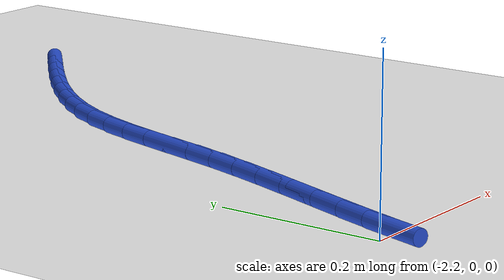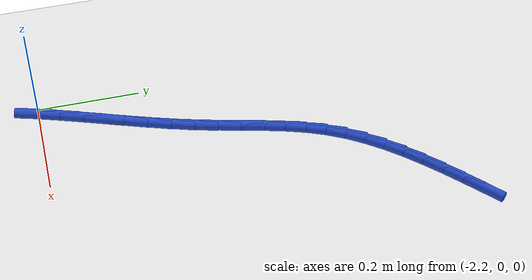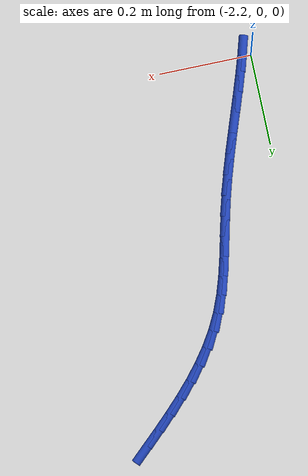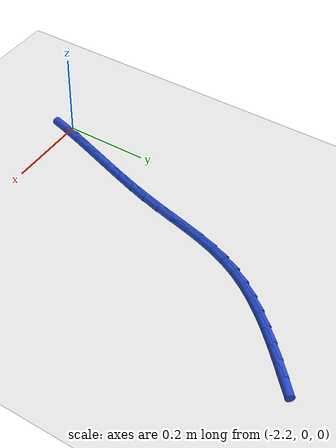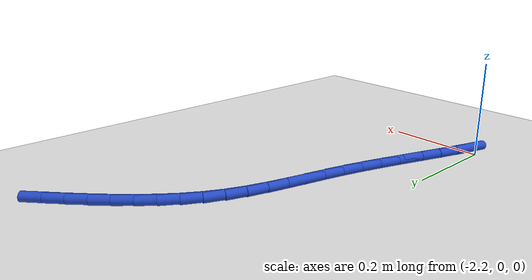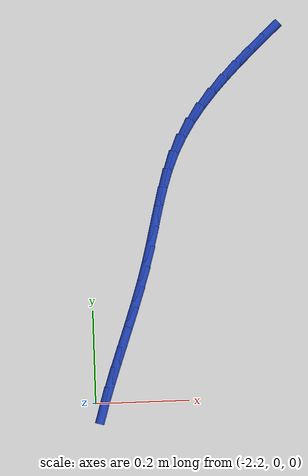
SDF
<sdf version="1.6">
 <world name="default">
  <model name="ground_plane">
   <static>1</static>
   <link name="link">
    <collision name="collision">
     <geometry><plane><normal>0 0 1</normal><size>100 100</size></plane></geometry>
     <surface><friction><ode><mu>100</mu><mu2>50</mu2></ode></friction></surface>
    </collision>
    <visual name="visual">
     <cast_shadows>0</cast_shadows>
     <geometry><plane><normal>0 0 1</normal><size>100 100</size></plane></geometry>
     <material>
      <script><uri>file://media/materials/scripts/gazebo.material</uri><name>Gazebo/WhiteGlow</name></script>
     </material>
    </visual>
   </link>
  </model>
  <model name="line">
   <link name="link_62">
    <pose>-1.8074625239738802 0.7809285111641552 0.01 0 1.57 0.7473431701015066</pose>
    <collision name="collision">
     <geometry><cylinder><radius>0.01</radius><length>0.08</length></cylinder></geometry>
    </collision>
    <visual name="visual">
     <material>
      <script><name>Gazebo/Blue</name><uri>file://media/materials/scripts/gazebo.material</uri></script>
     </material>
     <geometry><cylinder><radius>0.01</radius><length>0.08</length></cylinder></geometry>
    </visual>
   </link>
   <link name="link_63">
    <pose>-1.8385737901208974 0.7520993782561897 0.01 0 1.57 0.7634660642890896</pose>
    <collision name="collision">
     <geometry><cylinder><radius>0.01</radius><length>0.08</length></cylinder></geometry>
    </collision>
    <visual name="visual">
     <material>
      <script><name>Gazebo/Blue</name><uri>file://media/materials/scripts/gazebo.material</uri></script>
     </material>
     <geometry><cylinder><radius>0.01</radius><length>0.08</length></cylinder></geometry>
    </visual>
   </link>
   <link name="link_64">
    <pose>-1.8687483067696782 0.7232202399274006 0.01 0 1.57 0.7899852548965082</pose>
    <collision name="collision">
     <geometry><cylinder><radius>0.01</radius><length>0.08</length></cylinder></geometry>
    </collision>
    <visual name="visual">
     <material>
      <script><name>Gazebo/Blue</name><uri>file://media/materials/scripts/gazebo.material</uri></script>
     </material>
     <geometry><cylinder><radius>0.01</radius><length>0.08</length></cylinder></geometry>
    </visual>
   </link>
   <link name="link_65">
    <pose>-1.8976661694718746 0.6940358550298262 0.01 0 1.57 0.827477518248636</pose>
    <collision name="collision">
     <geometry><cylinder><radius>0.01</radius><length>0.08</length></cylinder></geometry>
    </collision>
    <visual name="visual">
     <material>
      <script><name>Gazebo/Blue</name><uri>file://media/materials/scripts/gazebo.material</uri></script>
     </material>
     <geometry><cylinder><radius>0.01</radius><length>0.08</length></cylinder></geometry>
    </visual>
   </link>
   <link name="link_66">
    <pose>-1.9250074737791392 0.6642909824155044 0.01 0 1.57 0.876489357288145</pose>
    <collision name="collision">
     <geometry><cylinder><radius>0.01</radius><length>0.08</length></cylinder></geometry>
    </collision>
    <visual name="visual">
     <material>
      <script><name>Gazebo/Blue</name><uri>file://media/materials/scripts/gazebo.material</uri></script>
     </material>
     <geometry><cylinder><radius>0.01</radius><length>0.08</length></cylinder></geometry>
    </visual>
   </link>
   <link name="link_67">
    <pose>-1.9504523152431228 0.6337303809364744 0.01 0 1.57 0.9373901838588955</pose>
    <collision name="collision">
     <geometry><cylinder><radius>0.01</radius><length>0.08</length></cylinder></geometry>
    </collision>
    <visual name="visual">
     <material>
      <script><name>Gazebo/Blue</name><uri>file://media/materials/scripts/gazebo.material</uri></script>
     </material>
     <geometry><cylinder><radius>0.01</radius><length>0.08</length></cylinder></geometry>
    </visual>
   </link>
   <link name="link_68">
    <pose>-1.9736807894154778 0.6020988094447737 0.01 0 1.57 1.0101576279154085</pose>
    <collision name="collision">
     <geometry><cylinder><radius>0.01</radius><length>0.08</length></cylinder></geometry>
    </collision>
    <visual name="visual">
     <material>
      <script><name>Gazebo/Blue</name><uri>file://media/materials/scripts/gazebo.material</uri></script>
     </material>
     <geometry><cylinder><radius>0.01</radius><length>0.08</length></cylinder></geometry>
    </visual>
   </link>
   <link name="link_69">
    <pose>-1.994372991847856 0.5691410267924414 0.01 0 1.57 1.0941157550892997</pose>
    <collision name="collision">
     <geometry><cylinder><radius>0.01</radius><length>0.08</length></cylinder></geometry>
    </collision>
    <visual name="visual">
     <material>
      <script><name>Gazebo/Blue</name><uri>file://media/materials/scripts/gazebo.material</uri></script>
     </material>
     <geometry><cylinder><radius>0.01</radius><length>0.08</length></cylinder></geometry>
    </visual>
   </link>
   <link name="link_70">
    <pose>-2.0122090180919088 0.5346017918315156 0.01 0 1.57 1.1828278139432165</pose>
    <collision name="collision">
     <geometry><cylinder><radius>0.01</radius><length>0.08</length></cylinder></geometry>
    </collision>
    <visual name="visual">
     <material>
      <script><name>Gazebo/Blue</name><uri>file://media/materials/scripts/gazebo.material</uri></script>
     </material>
     <geometry><cylinder><radius>0.01</radius><length>0.08</length></cylinder></geometry>
    </visual>
   </link>
   <link name="link_71">
    <pose>-2.0270449683745726 0.4982998634184965 0.01 0 1.57 1.2537887542804849</pose>
    <collision name="collision">
     <geometry><cylinder><radius>0.01</radius><length>0.08</length></cylinder></geometry>
    </collision>
    <visual name="visual">
     <material>
      <script><name>Gazebo/Blue</name><uri>file://media/materials/scripts/gazebo.material</uri></script>
     </material>
     <geometry><cylinder><radius>0.01</radius><length>0.08</length></cylinder></geometry>
    </visual>
   </link>
   <link name="link_72">
    <pose>-2.0394886622723254 0.4603700558506325 0.01 0 1.57 1.301442071299136</pose>
    <collision name="collision">
     <geometry><cylinder><radius>0.01</radius><length>0.08</length></cylinder></geometry>
    </collision>
    <visual name="visual">
     <material>
      <script><name>Gazebo/Blue</name><uri>file://media/materials/scripts/gazebo.material</uri></script>
     </material>
     <geometry><cylinder><radius>0.01</radius><length>0.08</length></cylinder></geometry>
    </visual>
   </link>
   <link name="link_73">
    <pose>-2.0503485713981564 0.4210315462500401 0.01 0 1.57 1.3269189731755269</pose>
    <collision name="collision">
     <geometry><cylinder><radius>0.01</radius><length>0.08</length></cylinder></geometry>
    </collision>
    <visual name="visual">
     <material>
      <script><name>Gazebo/Blue</name><uri>file://media/materials/scripts/gazebo.material</uri></script>
     </material>
     <geometry><cylinder><radius>0.01</radius><length>0.08</length></cylinder></geometry>
    </visual>
   </link>
   <link name="link_74">
    <pose>-2.060433169325963 0.38050351256328746 0.01 0 1.57 1.331651060375636</pose>
    <collision name="collision">
     <geometry><cylinder><radius>0.01</radius><length>0.08</length></cylinder></geometry>
    </collision>
    <visual name="visual">
     <material>
      <script><name>Gazebo/Blue</name><uri>file://media/materials/scripts/gazebo.material</uri></script>
     </material>
     <geometry><cylinder><radius>0.01</radius><length>0.08</length></cylinder></geometry>
    </visual>
   </link>
   <link name="link_75">
    <pose>-2.0705509296296474 0.33900513273694455 0.01 0 1.57 1.3169933857369476</pose>
    <collision name="collision">
     <geometry><cylinder><radius>0.01</radius><length>0.08</length></cylinder></geometry>
    </collision>
    <visual name="visual">
     <material>
      <script><name>Gazebo/Blue</name><uri>file://media/materials/scripts/gazebo.material</uri></script>
     </material>
     <geometry><cylinder><radius>0.01</radius><length>0.08</length></cylinder></geometry>
    </visual>
   </link>
   <link name="link_76">
    <pose>-2.0815103258831082 0.29675558471758007 0.01 0 1.57 1.2866702330453446</pose>
    <collision name="collision">
     <geometry><cylinder><radius>0.01</radius><length>0.08</length></cylinder></geometry>
    </collision>
    <visual name="visual">
     <material>
      <script><name>Gazebo/Blue</name><uri>file://media/materials/scripts/gazebo.material</uri></script>
     </material>
     <geometry><cylinder><radius>0.01</radius><length>0.08</length></cylinder></geometry>
    </visual>
   </link>
   <link name="link_77">
    <pose>-2.094005441904932 0.2539680373019398 0.01 0 1.57 1.2589902605134207</pose>
    <collision name="collision">
     <geometry><cylinder><radius>0.01</radius><length>0.08</length></cylinder></geometry>
    </collision>
    <visual name="visual">
     <material>
      <script><name>Gazebo/Blue</name><uri>file://media/materials/scripts/gazebo.material</uri></script>
     </material>
     <geometry><cylinder><radius>0.01</radius><length>0.08</length></cylinder></geometry>
    </visual>
   </link>
   <link name="link_78">
    <pose>-2.107915227584449 0.21081283847740007 0.01 0 1.57 1.240922138251701</pose>
    <collision name="collision">
     <geometry><cylinder><radius>0.01</radius><length>0.08</length></cylinder></geometry>
    </collision>
    <visual name="visual">
     <material>
      <script><name>Gazebo/Blue</name><uri>file://media/materials/scripts/gazebo.material</uri></script>
     </material>
     <geometry><cylinder><radius>0.01</radius><length>0.08</length></cylinder></geometry>
    </visual>
   </link>
   <link name="link_79">
    <pose>-2.122764807757921 0.1674417490095246 0.01 0 1.57 1.2318526278399027</pose>
    <collision name="collision">
     <geometry><cylinder><radius>0.01</radius><length>0.08</length></cylinder></geometry>
    </collision>
    <visual name="visual">
     <material>
      <script><name>Gazebo/Blue</name><uri>file://media/materials/scripts/gazebo.material</uri></script>
     </material>
     <geometry><cylinder><radius>0.01</radius><length>0.08</length></cylinder></geometry>
    </visual>
   </link>
   <link name="link_80">
    <pose>-2.1380778708064243 0.12400645420367372 0.01 0 1.57 1.2314830850288798</pose>
    <collision name="collision">
     <geometry><cylinder><radius>0.01</radius><length>0.08</length></cylinder></geometry>
    </collision>
    <visual name="visual">
     <material>
      <script><name>Gazebo/Blue</name><uri>file://media/materials/scripts/gazebo.material</uri></script>
     </material>
     <geometry><cylinder><radius>0.01</radius><length>0.08</length></cylinder></geometry>
    </visual>
   </link>
   <link name="link_81">
    <pose>-2.153378105111033 0.08065863936520631 0.01 0 1.57 1.2398559420433266</pose>
    <collision name="collision">
     <geometry><cylinder><radius>0.01</radius><length>0.08</length></cylinder></geometry>
    </collision>
    <visual name="visual">
     <material>
      <script><name>Gazebo/Blue</name><uri>file://media/materials/scripts/gazebo.material</uri></script>
     </material>
     <geometry><cylinder><radius>0.01</radius><length>0.08</length></cylinder></geometry>
    </visual>
   </link>
   <link name="link_82">
    <pose>-2.1681891990528204 0.03754998979948134 0.01 0 1.57 1.2573616447853828</pose>
    <collision name="collision">
     <geometry><cylinder><radius>0.01</radius><length>0.08</length></cylinder></geometry>
    </collision>
    <visual name="visual">
     <material>
      <script><name>Gazebo/Blue</name><uri>file://media/materials/scripts/gazebo.material</uri></script>
     </material>
     <geometry><cylinder><radius>0.01</radius><length>0.08</length></cylinder></geometry>
    </visual>
   </link>
   <link name="link_83">
    <pose>-2.182034841012862 -0.005167809188141066 0.01 0 1.57 1.2847582142516911</pose>
    <collision name="collision">
     <geometry><cylinder><radius>0.01</radius><length>0.08</length></cylinder></geometry>
    </collision>
    <visual name="visual">
     <material>
      <script><name>Gazebo/Blue</name><uri>file://media/materials/scripts/gazebo.material</uri></script>
     </material>
     <geometry><cylinder><radius>0.01</radius><length>0.08</length></cylinder></geometry>
    </visual>
   </link>
  </model>
 </world>
</sdf>
